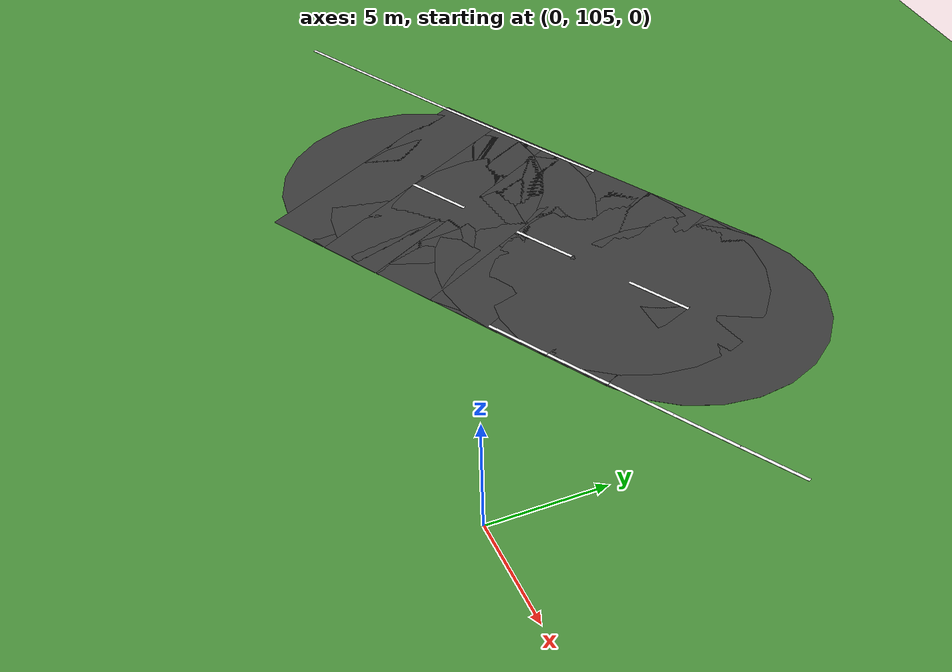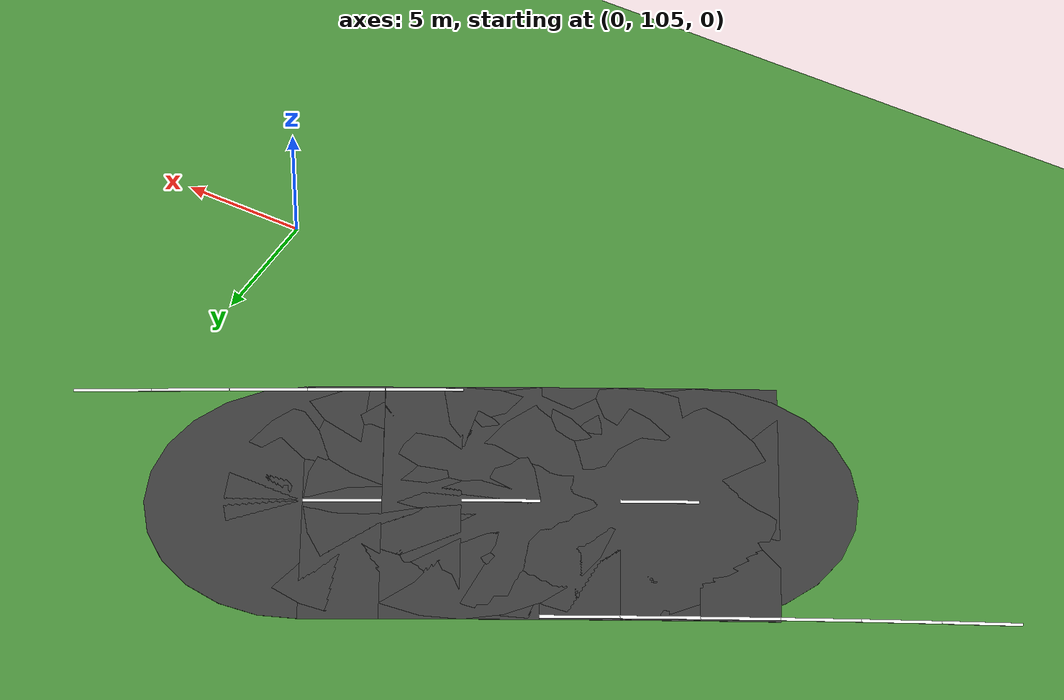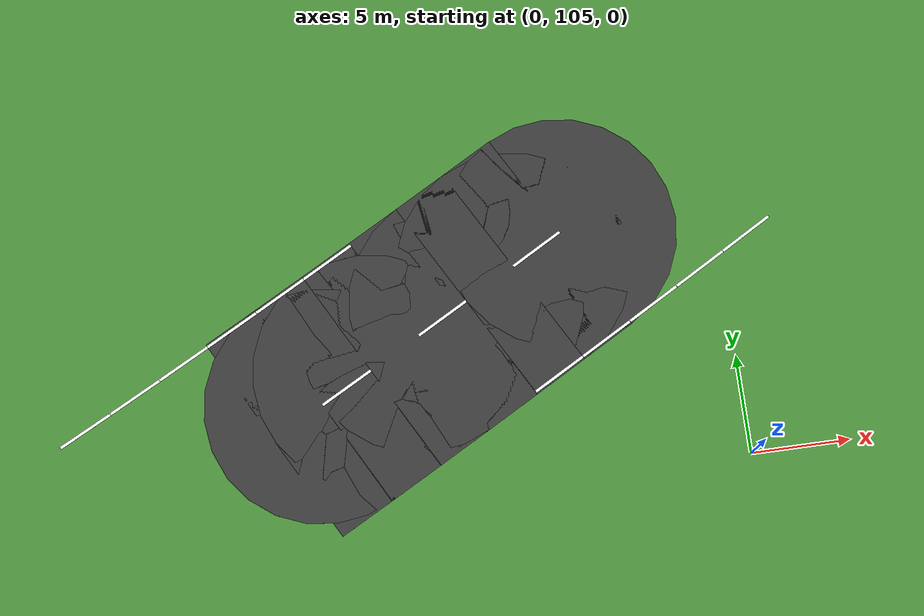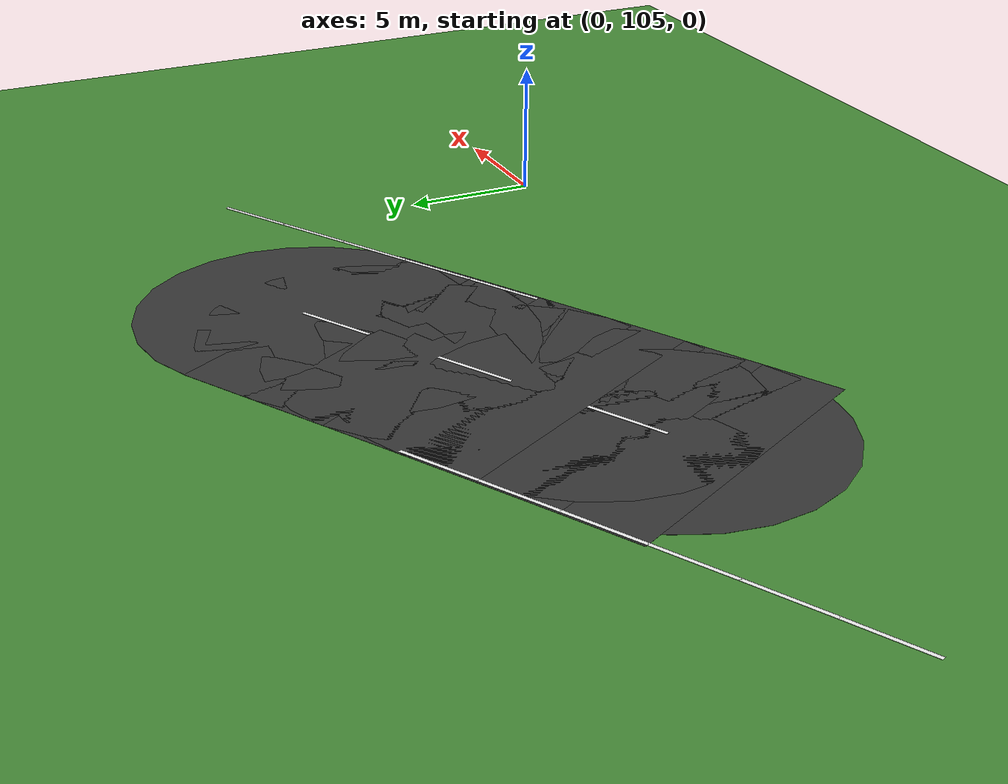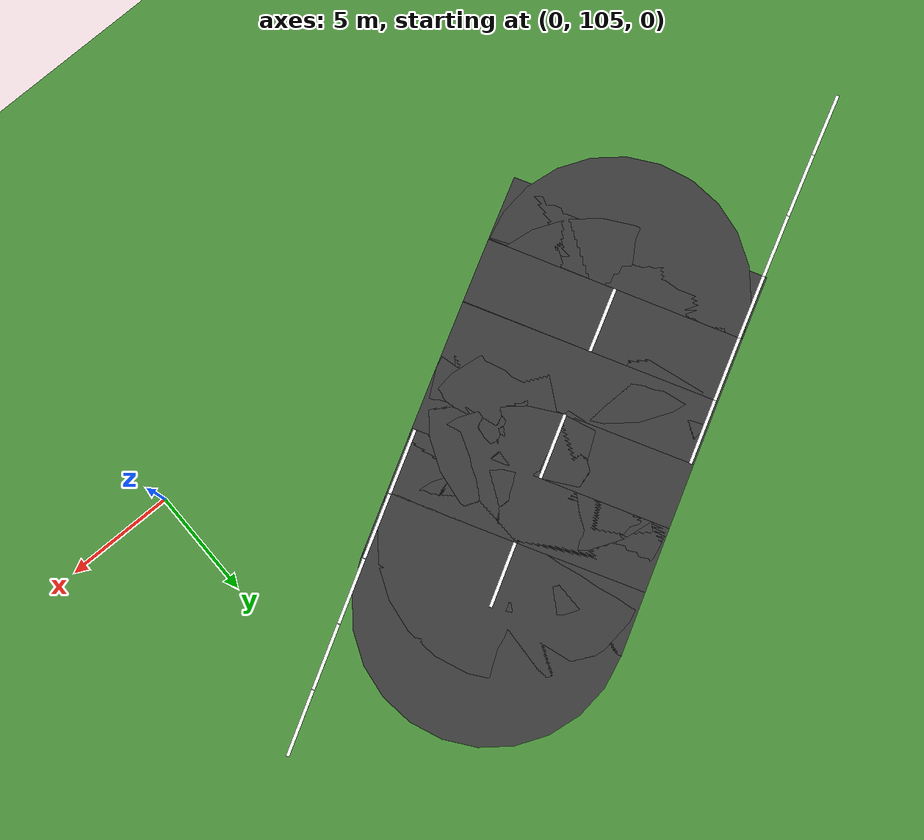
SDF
<sdf version="1.6">
 <world name="sem_silesia_ring_2026">
  <model name="ground_plane">
   <static>true</static>
   <link name="link">
    <collision name="collision">
     <geometry><plane><normal>0 0 1</normal><size>1200 1200</size></plane></geometry>
     <surface><friction><ode><mu>0.6</mu><mu2>0.6</mu2></ode></friction></surface>
    </collision>
    <visual name="visual">
     <geometry><plane><normal>0 0 1</normal><size>1200 1200</size></plane></geometry>
     <material><ambient>0.28 0.55 0.22 1</ambient><diffuse>0.28 0.55 0.22 1</diffuse></material>
    </visual>
   </link>
  </model>
  <model name="wl_L_s321">
   <static>true</static>
   <pose>1.5589 116.1977 0.0070 0 0 -2.6249</pose>
   <link name="link">
    <visual name="v">
     <geometry><box><size>3.0025 0.1500 0.0080</size></box></geometry>
     <material><ambient>0.95 0.95 0.95 1</ambient><diffuse>0.95 0.95 0.95 1</diffuse></material>
    </visual>
   </link>
  </model>
  <model name="wl_L_s322">
   <static>true</static>
   <pose>-1.0688 114.7098 0.0070 0 0 -2.6278</pose>
   <link name="link">
    <visual name="v">
     <geometry><box><size>3.0025 0.1500 0.0080</size></box></geometry>
     <material><ambient>0.95 0.95 0.95 1</ambient><diffuse>0.95 0.95 0.95 1</diffuse></material>
    </visual>
   </link>
  </model>
  <model name="wl_L_s323">
   <static>true</static>
   <pose>-3.6991 113.2301 0.0070 0 0 -2.6305</pose>
   <link name="link">
    <visual name="v">
     <geometry><box><size>3.0025 0.1500 0.0080</size></box></geometry>
     <material><ambient>0.95 0.95 0.95 1</ambient><diffuse>0.95 0.95 0.95 1</diffuse></material>
    </visual>
   </link>
  </model>
  <model name="road_s324">
   <static>true</static>
   <pose>-9.1812 116.8668 0.0030 0 0 -2.6329</pose>
   <link name="link">
    <visual name="v">
     <geometry><box><size>3.0025 12.0000 0.0060</size></box></geometry>
     <material><ambient>0.22 0.22 0.22 1</ambient><diffuse>0.22 0.22 0.22 1</diffuse></material>
    </visual>
    <collision name="c">
     <geometry><box><size>3.0025 12.0000 0.0060</size></box></geometry>
     <surface><friction><ode><mu>0.9</mu><mu2>0.9</mu2></ode></friction></surface>
    </collision>
   </link>
  </model>
  <model name="road_jnt324">
   <static>true</static>
   <pose>-7.8701 117.5980 0.0030 0 0 0</pose>
   <link name="link">
    <visual name="v">
     <geometry><cylinder><radius>6.0000</radius><length>0.0060</length></cylinder></geometry>
     <material><ambient>0.22 0.22 0.22 1</ambient><diffuse>0.22 0.22 0.22 1</diffuse></material>
    </visual>
    <collision name="c">
     <geometry><cylinder><radius>6.0000</radius><length>0.0060</length></cylinder></geometry>
     <surface><friction><ode><mu>0.9</mu><mu2>0.9</mu2></ode></friction></surface>
    </collision>
   </link>
  </model>
  <model name="wl_L_s324">
   <static>true</static>
   <pose>-6.3319 111.7576 0.0070 0 0 -2.6329</pose>
   <link name="link">
    <visual name="v">
     <geometry><box><size>3.0025 0.1500 0.0080</size></box></geometry>
     <material><ambient>0.95 0.95 0.95 1</ambient><diffuse>0.95 0.95 0.95 1</diffuse></material>
    </visual>
   </link>
  </model>
  <model name="cd_s324">
   <static>true</static>
   <pose>-9.1812 116.8668 0.0070 0 0 -2.6329</pose>
   <link name="link">
    <visual name="v">
     <geometry><box><size>3.0025 0.1500 0.0080</size></box></geometry>
     <material><ambient>0.95 0.95 0.95 1</ambient><diffuse>0.95 0.95 0.95 1</diffuse></material>
    </visual>
   </link>
  </model>
  <model name="road_s325">
   <static>true</static>
   <pose>-11.8055 115.4079 0.0030 0 0 -2.6355</pose>
   <link name="link">
    <visual name="v">
     <geometry><box><size>3.0025 12.0000 0.0060</size></box></geometry>
     <material><ambient>0.22 0.22 0.22 1</ambient><diffuse>0.22 0.22 0.22 1</diffuse></material>
    </visual>
    <collision name="c">
     <geometry><box><size>3.0025 12.0000 0.0060</size></box></geometry>
     <surface><friction><ode><mu>0.9</mu><mu2>0.9</mu2></ode></friction></surface>
    </collision>
   </link>
  </model>
  <model name="road_jnt325">
   <static>true</static>
   <pose>-10.4924 116.1356 0.0030 0 0 0</pose>
   <link name="link">
    <visual name="v">
     <geometry><cylinder><radius>6.0000</radius><length>0.0060</length></cylinder></geometry>
     <material><ambient>0.22 0.22 0.22 1</ambient><diffuse>0.22 0.22 0.22 1</diffuse></material>
    </visual>
    <collision name="c">
     <geometry><cylinder><radius>6.0000</radius><length>0.0060</length></cylinder></geometry>
     <surface><friction><ode><mu>0.9</mu><mu2>0.9</mu2></ode></friction></surface>
    </collision>
   </link>
  </model>
  <model name="wl_L_s325">
   <static>true</static>
   <pose>-8.9698 110.2912 0.0070 0 0 -2.6355</pose>
   <link name="link">
    <visual name="v">
     <geometry><box><size>3.0025 0.1500 0.0080</size></box></geometry>
     <material><ambient>0.95 0.95 0.95 1</ambient><diffuse>0.95 0.95 0.95 1</diffuse></material>
    </visual>
   </link>
  </model>
  <model name="road_s326">
   <static>true</static>
   <pose>-14.4340 113.9566 0.0030 0 0 -2.6387</pose>
   <link name="link">
    <visual name="v">
     <geometry><box><size>3.0025 12.0000 0.0060</size></box></geometry>
     <material><ambient>0.22 0.22 0.22 1</ambient><diffuse>0.22 0.22 0.22 1</diffuse></material>
    </visual>
    <collision name="c">
     <geometry><box><size>3.0025 12.0000 0.0060</size></box></geometry>
     <surface><friction><ode><mu>0.9</mu><mu2>0.9</mu2></ode></friction></surface>
    </collision>
   </link>
  </model>
  <model name="road_jnt326">
   <static>true</static>
   <pose>-13.1186 114.6802 0.0030 0 0 0</pose>
   <link name="link">
    <visual name="v">
     <geometry><cylinder><radius>6.0000</radius><length>0.0060</length></cylinder></geometry>
     <material><ambient>0.22 0.22 0.22 1</ambient><diffuse>0.22 0.22 0.22 1</diffuse></material>
    </visual>
    <collision name="c">
     <geometry><cylinder><radius>6.0000</radius><length>0.0060</length></cylinder></geometry>
     <surface><friction><ode><mu>0.9</mu><mu2>0.9</mu2></ode></friction></surface>
    </collision>
   </link>
  </model>
  <model name="cd_s326">
   <static>true</static>
   <pose>-14.4340 113.9566 0.0070 0 0 -2.6387</pose>
   <link name="link">
    <visual name="v">
     <geometry><box><size>3.0025 0.1500 0.0080</size></box></geometry>
     <material><ambient>0.95 0.95 0.95 1</ambient><diffuse>0.95 0.95 0.95 1</diffuse></material>
    </visual>
   </link>
  </model>
  <model name="road_s327">
   <static>true</static>
   <pose>-17.0675 112.5144 0.0030 0 0 -2.6424</pose>
   <link name="link">
    <visual name="v">
     <geometry><box><size>3.0025 12.0000 0.0060</size></box></geometry>
     <material><ambient>0.22 0.22 0.22 1</ambient><diffuse>0.22 0.22 0.22 1</diffuse></material>
    </visual>
    <collision name="c">
     <geometry><box><size>3.0025 12.0000 0.0060</size></box></geometry>
     <surface><friction><ode><mu>0.9</mu><mu2>0.9</mu2></ode></friction></surface>
    </collision>
   </link>
  </model>
  <model name="road_jnt327">
   <static>true</static>
   <pose>-15.7494 113.2331 0.0030 0 0 0</pose>
   <link name="link">
    <visual name="v">
     <geometry><cylinder><radius>6.0000</radius><length>0.0060</length></cylinder></geometry>
     <material><ambient>0.22 0.22 0.22 1</ambient><diffuse>0.22 0.22 0.22 1</diffuse></material>
    </visual>
    <collision name="c">
     <geometry><cylinder><radius>6.0000</radius><length>0.0060</length></cylinder></geometry>
     <surface><friction><ode><mu>0.9</mu><mu2>0.9</mu2></ode></friction></surface>
    </collision>
   </link>
  </model>
  <model name="wl_R_s327">
   <static>true</static>
   <pose>-19.8679 117.6506 0.0070 0 0 -2.6424</pose>
   <link name="link">
    <visual name="v">
     <geometry><box><size>3.0025 0.1500 0.0080</size></box></geometry>
     <material><ambient>0.95 0.95 0.95 1</ambient><diffuse>0.95 0.95 0.95 1</diffuse></material>
    </visual>
   </link>
  </model>
  <model name="road_s328">
   <static>true</static>
   <pose>-19.7067 111.0827 0.0030 0 0 -2.6467</pose>
   <link name="link">
    <visual name="v">
     <geometry><box><size>3.0025 12.0000 0.0060</size></box></geometry>
     <material><ambient>0.22 0.22 0.22 1</ambient><diffuse>0.22 0.22 0.22 1</diffuse></material>
    </visual>
    <collision name="c">
     <geometry><box><size>3.0025 12.0000 0.0060</size></box></geometry>
     <surface><friction><ode><mu>0.9</mu><mu2>0.9</mu2></ode></friction></surface>
    </collision>
   </link>
  </model>
  <model name="road_jnt328">
   <static>true</static>
   <pose>-18.3856 111.7958 0.0030 0 0 0</pose>
   <link name="link">
    <visual name="v">
     <geometry><cylinder><radius>6.0000</radius><length>0.0060</length></cylinder></geometry>
     <material><ambient>0.22 0.22 0.22 1</ambient><diffuse>0.22 0.22 0.22 1</diffuse></material>
    </visual>
    <collision name="c">
     <geometry><cylinder><radius>6.0000</radius><length>0.0060</length></cylinder></geometry>
     <surface><friction><ode><mu>0.9</mu><mu2>0.9</mu2></ode></friction></surface>
    </collision>
   </link>
  </model>
  <model name="wl_R_s328">
   <static>true</static>
   <pose>-22.4853 116.2307 0.0070 0 0 -2.6467</pose>
   <link name="link">
    <visual name="v">
     <geometry><box><size>3.0025 0.1500 0.0080</size></box></geometry>
     <material><ambient>0.95 0.95 0.95 1</ambient><diffuse>0.95 0.95 0.95 1</diffuse></material>
    </visual>
   </link>
  </model>
  <model name="cd_s328">
   <static>true</static>
   <pose>-19.7067 111.0827 0.0070 0 0 -2.6467</pose>
   <link name="link">
    <visual name="v">
     <geometry><box><size>3.0025 0.1500 0.0080</size></box></geometry>
     <material><ambient>0.95 0.95 0.95 1</ambient><diffuse>0.95 0.95 0.95 1</diffuse></material>
    </visual>
   </link>
  </model>
  <model name="road_s329">
   <static>true</static>
   <pose>-22.3523 109.6629 0.0030 0 0 -2.6514</pose>
   <link name="link">
    <visual name="v">
     <geometry><box><size>3.0025 12.0000 0.0060</size></box></geometry>
     <material><ambient>0.22 0.22 0.22 1</ambient><diffuse>0.22 0.22 0.22 1</diffuse></material>
    </visual>
    <collision name="c">
     <geometry><box><size>3.0025 12.0000 0.0060</size></box></geometry>
     <surface><friction><ode><mu>0.9</mu><mu2>0.9</mu2></ode></friction></surface>
    </collision>
   </link>
  </model>
  <model name="road_jnt329">
   <static>true</static>
   <pose>-21.0278 110.3697 0.0030 0 0 0</pose>
   <link name="link">
    <visual name="v">
     <geometry><cylinder><radius>6.0000</radius><length>0.0060</length></cylinder></geometry>
     <material><ambient>0.22 0.22 0.22 1</ambient><diffuse>0.22 0.22 0.22 1</diffuse></material>
    </visual>
    <collision name="c">
     <geometry><cylinder><radius>6.0000</radius><length>0.0060</length></cylinder></geometry>
     <surface><friction><ode><mu>0.9</mu><mu2>0.9</mu2></ode></friction></surface>
    </collision>
   </link>
  </model>
  <model name="wl_R_s329">
   <static>true</static>
   <pose>-25.1063 114.8241 0.0070 0 0 -2.6514</pose>
   <link name="link">
    <visual name="v">
     <geometry><box><size>3.0025 0.1500 0.0080</size></box></geometry>
     <material><ambient>0.95 0.95 0.95 1</ambient><diffuse>0.95 0.95 0.95 1</diffuse></material>
    </visual>
   </link>
  </model>
  <model name="wl_R_s330">
   <static>true</static>
   <pose>-27.7316 113.4322 0.0070 0 0 -2.6567</pose>
   <link name="link">
    <visual name="v">
     <geometry><box><size>3.0025 0.1500 0.0080</size></box></geometry>
     <material><ambient>0.95 0.95 0.95 1</ambient><diffuse>0.95 0.95 0.95 1</diffuse></material>
    </visual>
   </link>
  </model>
  <model name="wl_R_s331">
   <static>true</static>
   <pose>-30.3618 112.0565 0.0070 0 0 -2.6626</pose>
   <link name="link">
    <visual name="v">
     <geometry><box><size>3.0025 0.1500 0.0080</size></box></geometry>
     <material><ambient>0.95 0.95 0.95 1</ambient><diffuse>0.95 0.95 0.95 1</diffuse></material>
    </visual>
   </link>
  </model>
  <model name="wl_R_s332">
   <static>true</static>
   <pose>-32.9976 110.6983 0.0070 0 0 -2.6690</pose>
   <link name="link">
    <visual name="v">
     <geometry><box><size>3.0025 0.1500 0.0080</size></box></geometry>
     <material><ambient>0.95 0.95 0.95 1</ambient><diffuse>0.95 0.95 0.95 1</diffuse></material>
    </visual>
   </link>
  </model>
 </world>
</sdf>
